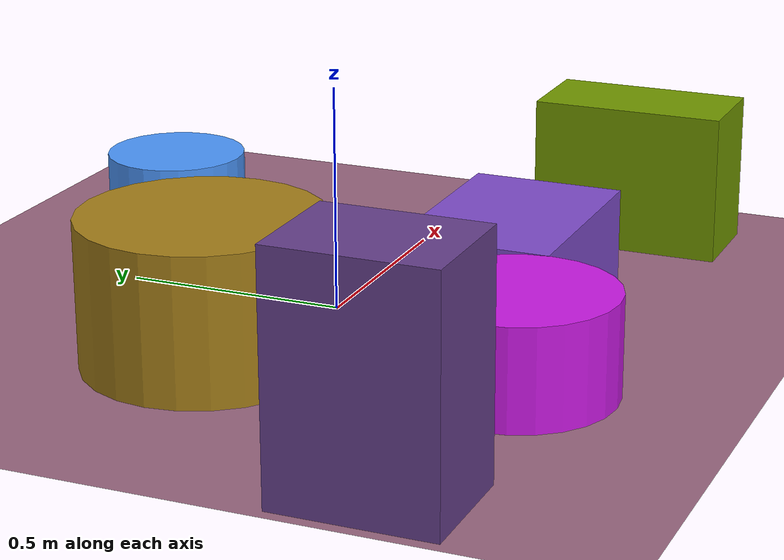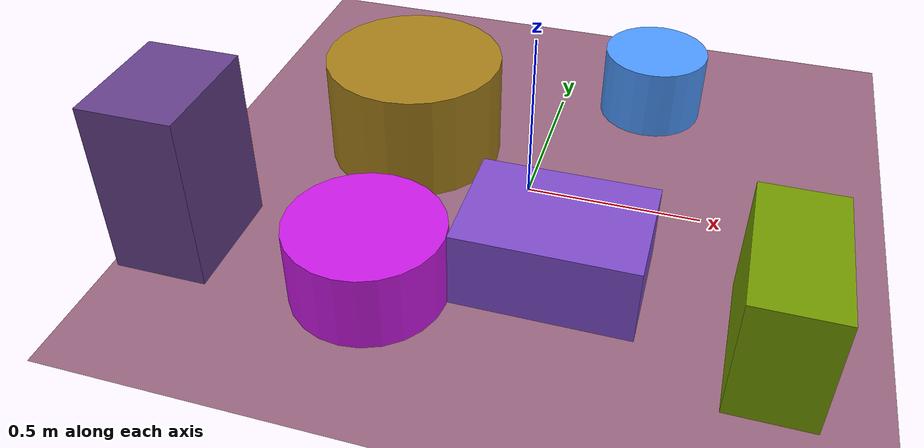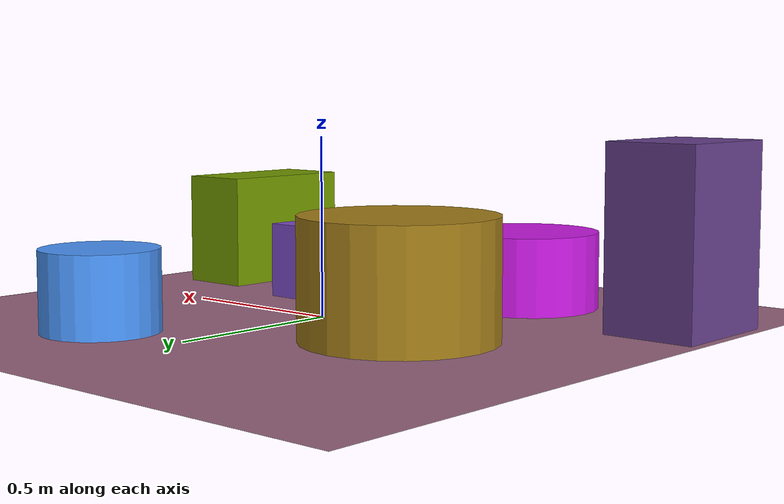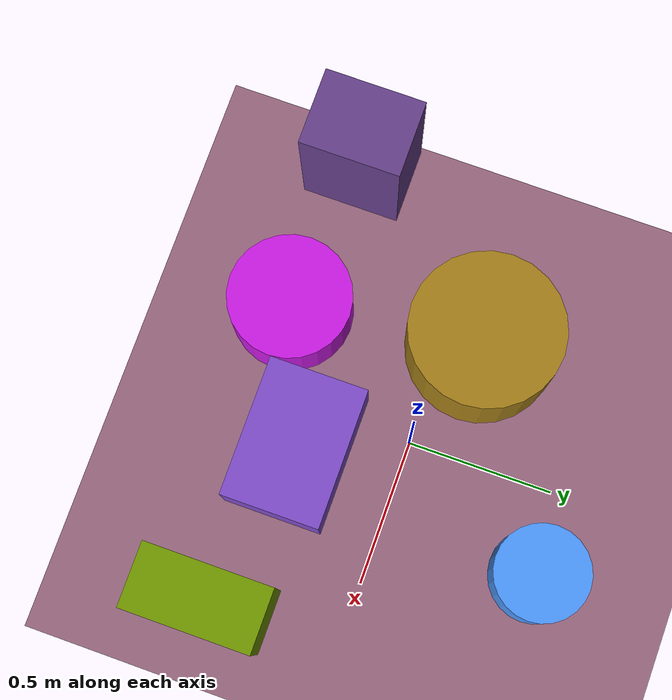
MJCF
<mujoco>
   <asset>
<texture type="skybox" builtin="gradient" rgb1="0.5 1.0 0.5" rgb2="0.1 0.9 0.3" width="256" height="256"/>
<texture name="gradient_0" builtin="gradient" rgb1="0.9 0.5 0.1" rgb2="0.4 0.5 0.1" width="200" height="200"/>
<texture name="gradient_1" builtin="gradient" rgb1="0.6 0.3 0.8" rgb2="0.2 0.2 0.3" width="200" height="200"/>
<texture name="flat_2" builtin="flat" rgb1="0.5 0.3 0.8" rgb2="0.5 0.3 0.8"  width="200" height="200"/>
<texture name="flat_3" builtin="flat" rgb1="0.3 0.6 1.0" rgb2="0.3 0.6 1.0"  width="200" height="200"/>
<texture name="checker_4" builtin="checker" rgb1="0.4 0.5 0.0" rgb2="0.5 0.7 0.0" width="200" height="200"/>
<texture name="flat_5" builtin="flat" rgb1="0.8 0.1 0.9" rgb2="0.8 0.1 0.9"  width="200" height="200"/><material name="gradient_0_mat" reflectance="0" texture="gradient_0" texuniform="true"/>
<material name="gradient_1_mat" reflectance="0" texture="gradient_1" texuniform="true"/>
<material name="flat_2_mat" reflectance="0" texture="flat_2" texuniform="true"/>
<material name="flat_3_mat" reflectance="0" texture="flat_3" texuniform="true"/>
<material name="checker_4_mat" reflectance="0" texrepeat="2 2" texture="checker_4" texuniform="false" />
<material name="flat_5_mat" reflectance="0" texture="flat_5" texuniform="true"/>
   </asset>

   <worldbody>
      <light diffuse=".9 .9 .9" pos="0 0 3" dir="0 0 -1"/>
     <geom type="plane" size="1 1 0.1" rgba="0.6 0.4 0.5 1"/>
<geom type="cylinder" pos="-0.39 0.12 0.16" size="0.26 0.16 0.16" material="gradient_0_mat" />
<geom type="box" pos="-0.85 -0.47 0.25" size="0.13 0.17 0.25" material="gradient_1_mat" />
<geom type="box" pos="0.15 -0.35 0.11" size="0.24 0.17 0.11" material="flat_2_mat" />
<geom type="cylinder" pos="0.28 0.54 0.11" size="0.16 0.11 0.11" material="flat_3_mat" />
<geom type="box" pos="0.72 -0.46 0.17" size="0.11 0.22 0.17" material="checker_4_mat" />
<geom type="cylinder" pos="-0.3 -0.53 0.11" size="0.21 0.11 0.11" material="flat_5_mat" /><camera euler="60 0 180" fovy="60" name="camera2" pos="0.1 -1.5 1"></camera>   </worldbody>
</mujoco>
